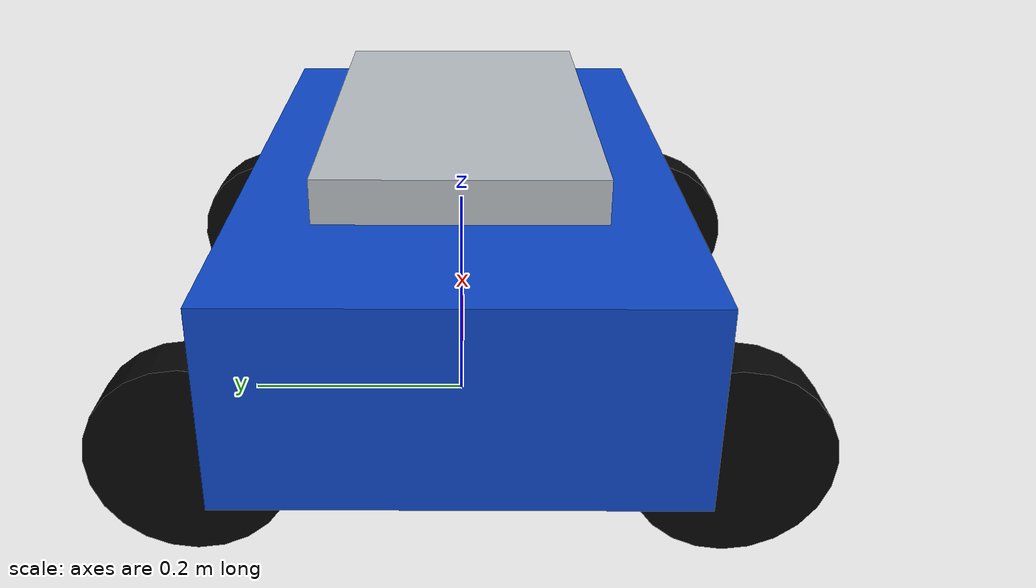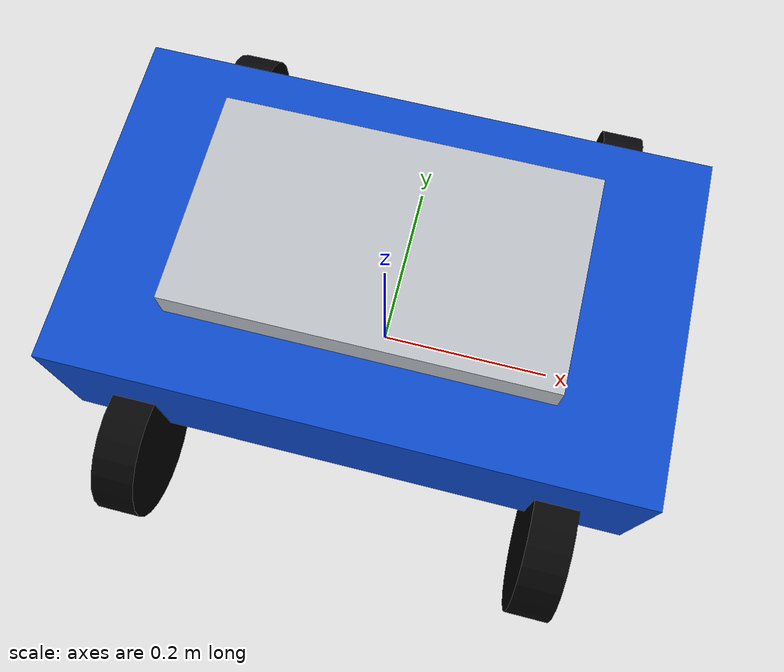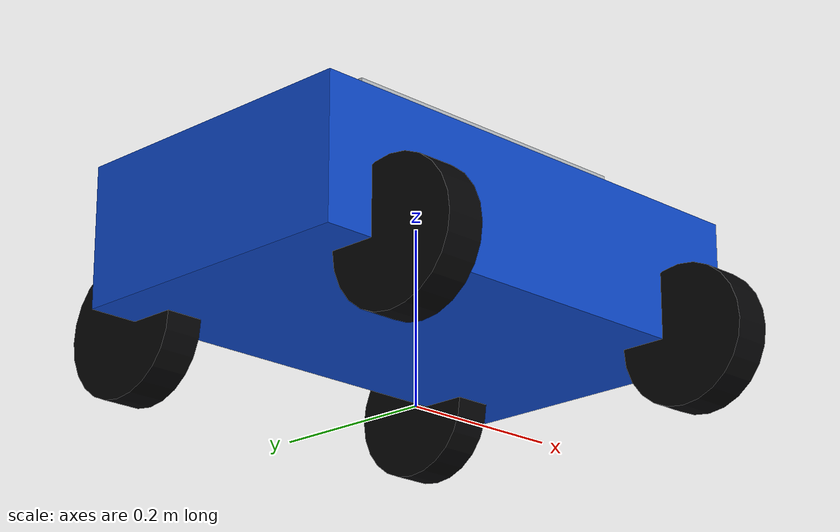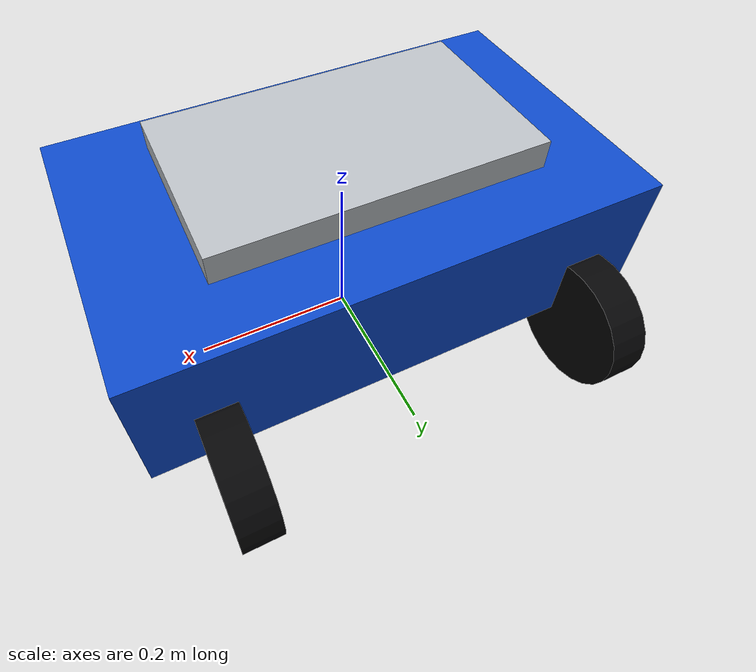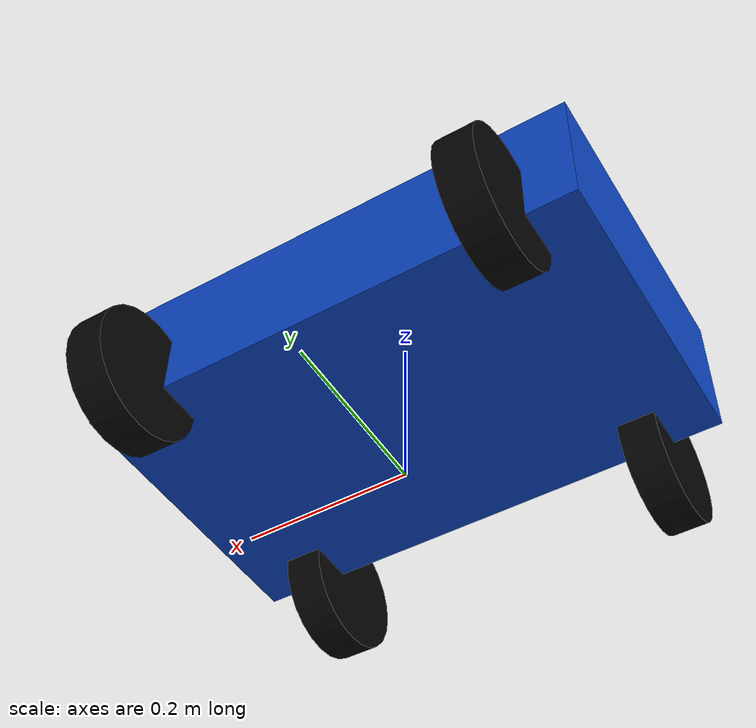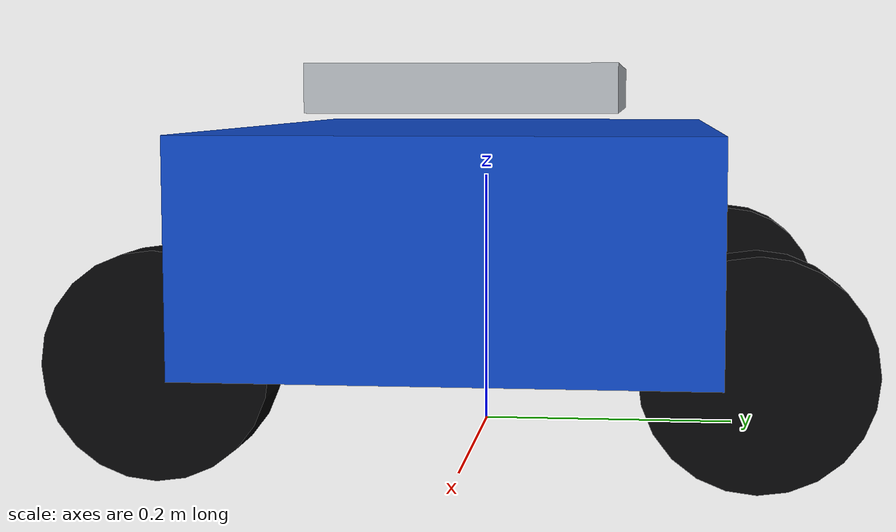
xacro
<?xml version="1.0"?>
<robot xmlns:xacro="http://www.ros.org/wiki/xacro" name="four_wheel_diff_car">
  <xacro:property name="body_length" value="0.60"/>
  <xacro:property name="body_width" value="0.36"/>
  <xacro:property name="body_height" value="0.16"/>
  <xacro:property name="body_mass" value="5.0"/>
  <xacro:property name="wheel_radius" value="0.08"/>
  <xacro:property name="wheel_width" value="0.045"/>
  <xacro:property name="wheel_mass" value="0.35"/>
  <xacro:property name="wheel_x" value="0.22"/>
  <xacro:property name="wheel_y" value="0.205"/>
  <xacro:property name="wheel_z" value="0.08"/>

  <material name="blue_body">
    <color rgba="0.05 0.28 0.78 1.0"/>
  </material>
  <material name="dark_wheel">
    <color rgba="0.02 0.02 0.025 1.0"/>
  </material>
  <material name="silver">
    <color rgba="0.72 0.74 0.76 1.0"/>
  </material>

  <xacro:macro name="box_inertia" params="mass x y z">
    <inertial>
      <mass value="${mass}"/>
      <origin xyz="0 0 0" rpy="0 0 0"/>
      <inertia
        ixx="${mass * (y * y + z * z) / 12.0}"
        ixy="0"
        ixz="0"
        iyy="${mass * (x * x + z * z) / 12.0}"
        iyz="0"
        izz="${mass * (x * x + y * y) / 12.0}"/>
    </inertial>
  </xacro:macro>

  <xacro:macro name="cylinder_inertia_x_axis" params="mass radius length">
    <inertial>
      <mass value="${mass}"/>
      <origin xyz="0 0 0" rpy="0 1.57079632679 0"/>
      <inertia
        ixx="${mass * radius * radius / 2.0}"
        ixy="0"
        ixz="0"
        iyy="${mass * (3.0 * radius * radius + length * length) / 12.0}"
        iyz="0"
        izz="${mass * (3.0 * radius * radius + length * length) / 12.0}"/>
    </inertial>
  </xacro:macro>

  <link name="base_footprint"/>

  <joint name="base_footprint_joint" type="fixed">
    <parent link="base_footprint"/>
    <child link="base_link"/>
    <origin xyz="0 0 ${wheel_z + body_height / 2.0}" rpy="0 0 0"/>
  </joint>

  <link name="base_link">
    <visual>
      <origin xyz="0 0 0" rpy="0 0 0"/>
      <geometry>
        <box size="${body_length} ${body_width} ${body_height}"/>
      </geometry>
      <material name="blue_body"/>
    </visual>
    <collision>
      <origin xyz="0 0 0" rpy="0 0 0"/>
      <geometry>
        <box size="${body_length} ${body_width} ${body_height}"/>
      </geometry>
    </collision>
    <xacro:box_inertia mass="${body_mass}" x="${body_length}" y="${body_width}" z="${body_height}"/>
  </link>

  <link name="top_plate">
    <visual>
      <origin xyz="0 0 0" rpy="0 0 0"/>
      <geometry>
        <box size="0.38 0.22 0.035"/>
      </geometry>
      <material name="silver"/>
    </visual>
    <collision>
      <origin xyz="0 0 0" rpy="0 0 0"/>
      <geometry>
        <box size="0.38 0.22 0.035"/>
      </geometry>
    </collision>
    <xacro:box_inertia mass="0.6" x="0.38" y="0.22" z="0.035"/>
  </link>

  <joint name="top_plate_joint" type="fixed">
    <parent link="base_link"/>
    <child link="top_plate"/>
    <origin xyz="0 0 ${body_height / 2.0 + 0.03}" rpy="0 0 0"/>
  </joint>

  <xacro:macro name="wheel" params="name x y">
    <link name="${name}_wheel_link">
      <visual>
        <origin xyz="0 0 0" rpy="0 1.57079632679 0"/>
        <geometry>
          <cylinder radius="${wheel_radius}" length="${wheel_width}"/>
        </geometry>
        <material name="dark_wheel"/>
      </visual>
      <collision>
        <origin xyz="0 0 0" rpy="0 1.57079632679 0"/>
        <geometry>
          <cylinder radius="${wheel_radius}" length="${wheel_width}"/>
        </geometry>
      </collision>
      <xacro:cylinder_inertia_x_axis mass="${wheel_mass}" radius="${wheel_radius}" length="${wheel_width}"/>
    </link>

    <joint name="${name}_wheel_joint" type="continuous">
      <parent link="base_link"/>
      <child link="${name}_wheel_link"/>
      <origin xyz="${x} ${y} ${-body_height / 2.0}" rpy="0 0 0"/>
      <axis xyz="0 1 0"/>
    </joint>

    <gazebo reference="${name}_wheel_link">
      <material>Gazebo/Black</material>
      <mu1>1.0</mu1>
      <mu2>1.0</mu2>
    </gazebo>
  </xacro:macro>

  <xacro:wheel name="front_left" x="${wheel_x}" y="${wheel_y}"/>
  <xacro:wheel name="front_right" x="${wheel_x}" y="${-wheel_y}"/>
  <xacro:wheel name="rear_left" x="${-wheel_x}" y="${wheel_y}"/>
  <xacro:wheel name="rear_right" x="${-wheel_x}" y="${-wheel_y}"/>

  <gazebo reference="base_link">
    <material>Gazebo/Blue</material>
  </gazebo>
  <gazebo reference="top_plate">
    <material>Gazebo/Grey</material>
  </gazebo>
</robot>
